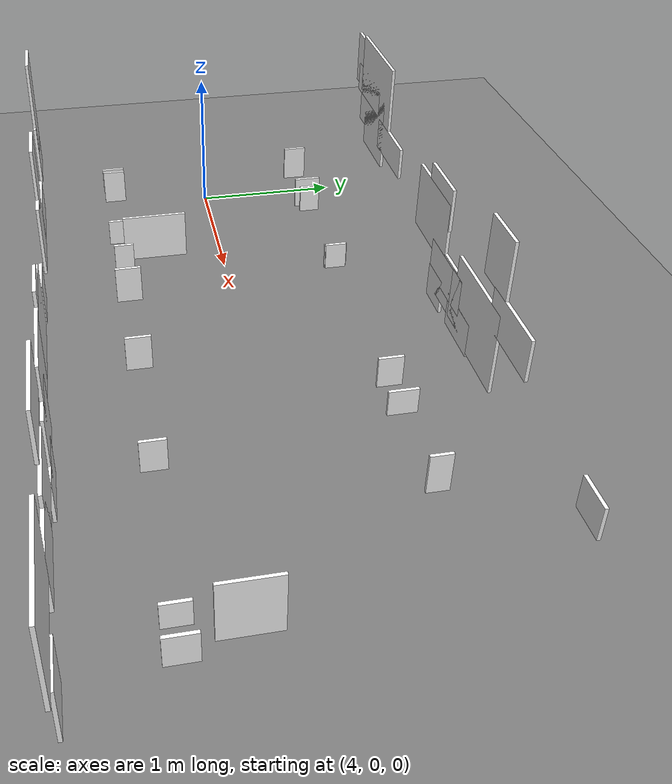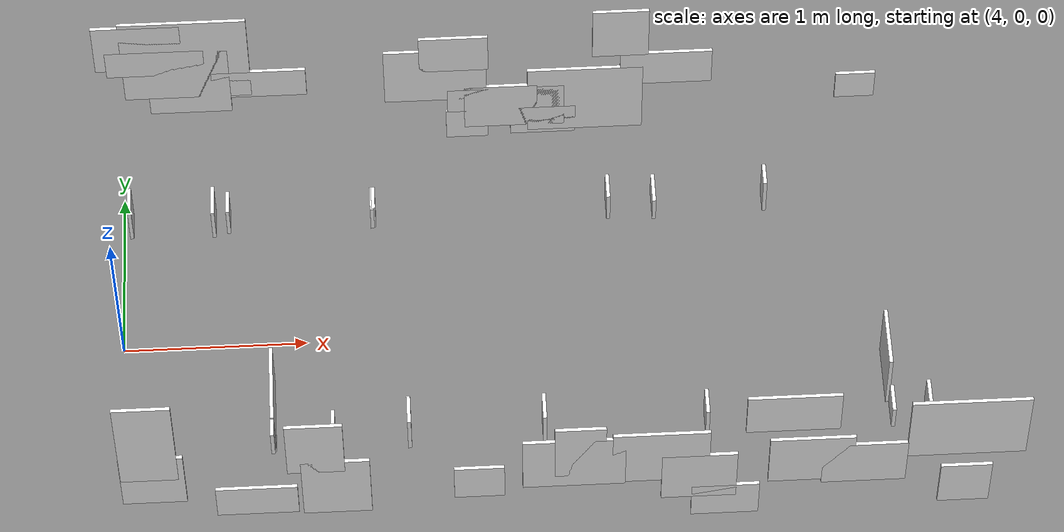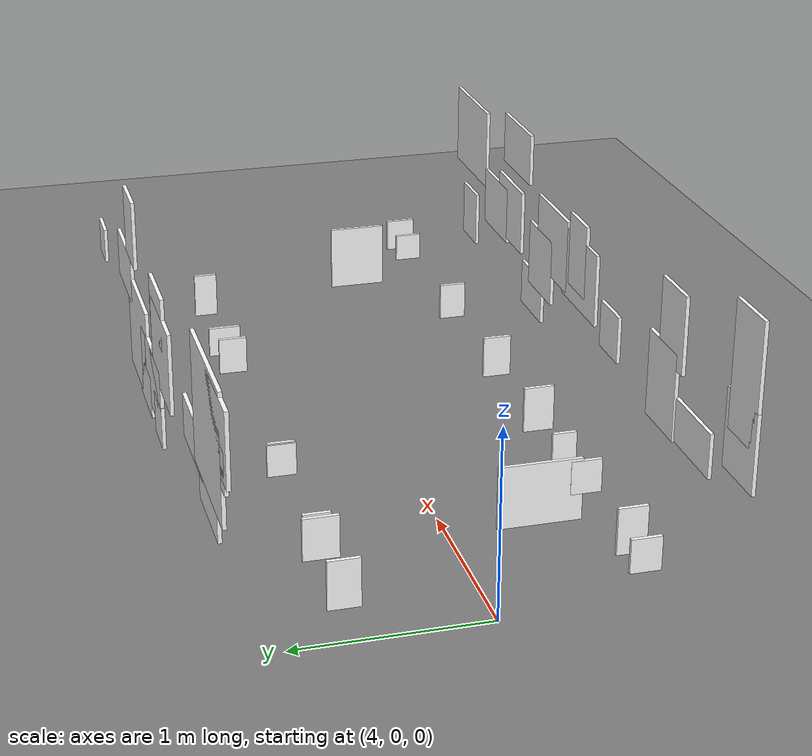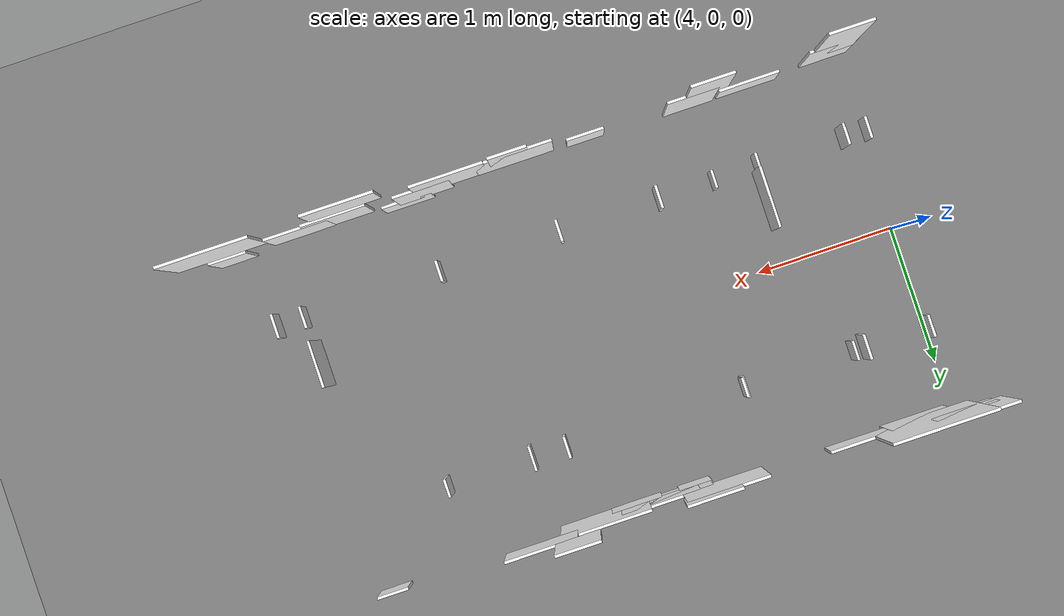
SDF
<sdf version="1.9">
 <world name="tunnel_world">
  <model name="ground_plane">
   <static>true</static>
   <link name="ground">
    <collision name="ground_collision">
     <geometry><plane><normal>0 0 1</normal><size>100 100</size></plane></geometry>
    </collision>
    <visual name="ground_visual">
     <geometry><plane><normal>0 0 1</normal><size>100 100</size></plane></geometry>
     <material>
      <diffuse>0.50 0.50 0.50 1</diffuse>
      <emissive>0.08 0.08 0.08 1</emissive>
      <ambient>0.5 0.5 0.5</ambient>
     </material>
    </visual>
   </link>
  </model>
  <model name="defect_crack_02">
   <static>true</static>
   <pose>4.232 1.25 0.946 0 0 0</pose>
   <link name="link">
    <visual name="visual">
     <laser_retro>500</laser_retro>
     <geometry><box><size>0.537 0.02 0.211</size></box></geometry>
     <material>
      <ambient>1 1 1 1</ambient>
      <diffuse>1 1 1 1</diffuse>
      <emissive>0.05 0.05 0.05 1</emissive>
      <specular>0.05 0.05 0.05 1</specular>
      <pbr>
       <metal>
        <albedo_map>file:///home/ylf/workspace/inspection_robot/data_gen/textures_data1/crack_19.png</albedo_map>
        <metalness>0.0</metalness>
        <roughness>0.9</roughness>
       </metal>
      </pbr>
     </material>
    </visual>
    <collision name="collision"><geometry><box><size>0.537 0.02 0.211</size></box></geometry></collision>
   </link>
  </model>
  <model name="defect_crack_04">
   <static>true</static>
   <pose>7.529 -1.25 1.055 0 0 0</pose>
   <link name="link">
    <visual name="visual">
     <laser_retro>500</laser_retro>
     <geometry><box><size>0.49 0.02 0.311</size></box></geometry>
     <material>
      <ambient>1 1 1 1</ambient>
      <diffuse>1 1 1 1</diffuse>
      <emissive>0.05 0.05 0.05 1</emissive>
      <specular>0.05 0.05 0.05 1</specular>
      <pbr>
       <metal>
        <albedo_map>file:///home/ylf/workspace/inspection_robot/data_gen/textures_data1/crack_5.png</albedo_map>
        <metalness>0.0</metalness>
        <roughness>0.9</roughness>
       </metal>
      </pbr>
     </material>
    </visual>
    <collision name="collision"><geometry><box><size>0.49 0.02 0.311</size></box></geometry></collision>
   </link>
  </model>
  <model name="defect_crack_15">
   <static>true</static>
   <pose>6.335 1.25 0.422 0 0 0</pose>
   <link name="link">
    <visual name="visual">
     <laser_retro>500</laser_retro>
     <geometry><box><size>0.273 0.02 0.35</size></box></geometry>
     <material>
      <ambient>1 1 1 1</ambient>
      <diffuse>1 1 1 1</diffuse>
      <emissive>0.05 0.05 0.05 1</emissive>
      <specular>0.05 0.05 0.05 1</specular>
      <pbr>
       <metal>
        <albedo_map>file:///home/ylf/workspace/inspection_robot/data_gen/textures_data1/crack_10.png</albedo_map>
        <metalness>0.0</metalness>
        <roughness>0.9</roughness>
       </metal>
      </pbr>
     </material>
    </visual>
    <collision name="collision"><geometry><box><size>0.273 0.02 0.35</size></box></geometry></collision>
   </link>
  </model>
  <model name="defect_crack_17">
   <static>true</static>
   <pose>6.394 -1.25 0.664 0 0 0</pose>
   <link name="link">
    <visual name="visual">
     <laser_retro>500</laser_retro>
     <geometry><box><size>0.538 0.02 0.424</size></box></geometry>
     <material>
      <ambient>1 1 1 1</ambient>
      <diffuse>1 1 1 1</diffuse>
      <emissive>0.05 0.05 0.05 1</emissive>
      <specular>0.05 0.05 0.05 1</specular>
      <pbr>
       <metal>
        <albedo_map>file:///home/ylf/workspace/inspection_robot/data_gen/textures_data1/crack_22.png</albedo_map>
        <metalness>0.0</metalness>
        <roughness>0.9</roughness>
       </metal>
      </pbr>
     </material>
    </visual>
    <collision name="collision"><geometry><box><size>0.538 0.02 0.424</size></box></geometry></collision>
   </link>
  </model>
  <model name="defect_equip_bracket_loose_05">
   <static>true</static>
   <pose>7.195 -1.25 0.244 0 0 0</pose>
   <link name="link">
    <visual name="visual">
     <laser_retro>760</laser_retro>
     <geometry><box><size>0.358 0.02 0.273</size></box></geometry>
     <material>
      <ambient>1 1 1 1</ambient>
      <diffuse>1 1 1 1</diffuse>
      <emissive>0.05 0.05 0.05 1</emissive>
      <specular>0.05 0.05 0.05 1</specular>
      <pbr>
       <metal>
        <albedo_map>file:///home/ylf/workspace/inspection_robot/data_gen/textures_data1/equip_bracket_loose_6.png</albedo_map>
        <metalness>0.0</metalness>
        <roughness>0.9</roughness>
       </metal>
      </pbr>
     </material>
    </visual>
    <collision name="collision"><geometry><box><size>0.358 0.02 0.273</size></box></geometry></collision>
   </link>
  </model>
  <model name="defect_equip_bracket_loose_07">
   <static>true</static>
   <pose>5.898 -1.25 0.518 0 0 0</pose>
   <link name="link">
    <visual name="visual">
     <laser_retro>760</laser_retro>
     <geometry><box><size>0.264 0.02 0.271</size></box></geometry>
     <material>
      <ambient>1 1 1 1</ambient>
      <diffuse>1 1 1 1</diffuse>
      <emissive>0.05 0.05 0.05 1</emissive>
      <specular>0.05 0.05 0.05 1</specular>
      <pbr>
       <metal>
        <albedo_map>file:///home/ylf/workspace/inspection_robot/data_gen/textures_data1/equip_bracket_loose_1.png</albedo_map>
        <metalness>0.0</metalness>
        <roughness>0.9</roughness>
       </metal>
      </pbr>
     </material>
    </visual>
    <collision name="collision"><geometry><box><size>0.264 0.02 0.271</size></box></geometry></collision>
   </link>
  </model>
  <model name="defect_equip_bracket_loose_11">
   <static>true</static>
   <pose>8.093 1.25 0.492 0 0 0</pose>
   <link name="link">
    <visual name="visual">
     <laser_retro>760</laser_retro>
     <geometry><box><size>0.219 0.02 0.208</size></box></geometry>
     <material>
      <ambient>1 1 1 1</ambient>
      <diffuse>1 1 1 1</diffuse>
      <emissive>0.05 0.05 0.05 1</emissive>
      <specular>0.05 0.05 0.05 1</specular>
      <pbr>
       <metal>
        <albedo_map>file:///home/ylf/workspace/inspection_robot/data_gen/textures_data1/equip_bracket_loose_17.png</albedo_map>
        <metalness>0.0</metalness>
        <roughness>0.9</roughness>
       </metal>
      </pbr>
     </material>
    </visual>
    <collision name="collision"><geometry><box><size>0.219 0.02 0.208</size></box></geometry></collision>
   </link>
  </model>
  <model name="defect_equip_bracket_loose_12">
   <static>true</static>
   <pose>4.731 -1.25 0.43 0 0 0</pose>
   <link name="link">
    <visual name="visual">
     <laser_retro>760</laser_retro>
     <geometry><box><size>0.43 0.02 0.245</size></box></geometry>
     <material>
      <ambient>1 1 1 1</ambient>
      <diffuse>1 1 1 1</diffuse>
      <emissive>0.05 0.05 0.05 1</emissive>
      <specular>0.05 0.05 0.05 1</specular>
      <pbr>
       <metal>
        <albedo_map>file:///home/ylf/workspace/inspection_robot/data_gen/textures_data1/equip_bracket_loose_19.png</albedo_map>
        <metalness>0.0</metalness>
        <roughness>0.9</roughness>
       </metal>
      </pbr>
     </material>
    </visual>
    <collision name="collision"><geometry><box><size>0.43 0.02 0.245</size></box></geometry></collision>
   </link>
  </model>
  <model name="defect_equip_bracket_loose_13">
   <static>true</static>
   <pose>6.427 -1.25 0.766 0 0 0</pose>
   <link name="link">
    <visual name="visual">
     <laser_retro>760</laser_retro>
     <geometry><box><size>0.268 0.02 0.437</size></box></geometry>
     <material>
      <ambient>1 1 1 1</ambient>
      <diffuse>1 1 1 1</diffuse>
      <emissive>0.05 0.05 0.05 1</emissive>
      <specular>0.05 0.05 0.05 1</specular>
      <pbr>
       <metal>
        <albedo_map>file:///home/ylf/workspace/inspection_robot/data_gen/textures_data1/equip_bracket_loose_10.png</albedo_map>
        <metalness>0.0</metalness>
        <roughness>0.9</roughness>
       </metal>
      </pbr>
     </material>
    </visual>
    <collision name="collision"><geometry><box><size>0.268 0.02 0.437</size></box></geometry></collision>
   </link>
  </model>
  <model name="defect_equip_bracket_loose_18">
   <static>true</static>
   <pose>8.465 -1.25 0.305 0 0 0</pose>
   <link name="link">
    <visual name="visual">
     <laser_retro>760</laser_retro>
     <geometry><box><size>0.272 0.02 0.34</size></box></geometry>
     <material>
      <ambient>1 1 1 1</ambient>
      <diffuse>1 1 1 1</diffuse>
      <emissive>0.05 0.05 0.05 1</emissive>
      <specular>0.05 0.05 0.05 1</specular>
      <pbr>
       <metal>
        <albedo_map>file:///home/ylf/workspace/inspection_robot/data_gen/textures_data1/equip_bracket_loose_25.png</albedo_map>
        <metalness>0.0</metalness>
        <roughness>0.9</roughness>
       </metal>
      </pbr>
     </material>
    </visual>
    <collision name="collision"><geometry><box><size>0.272 0.02 0.34</size></box></geometry></collision>
   </link>
  </model>
  <model name="defect_equip_bracket_loose_21">
   <static>true</static>
   <pose>6.354 1.25 0.288 0 0 0</pose>
   <link name="link">
    <visual name="visual">
     <laser_retro>760</laser_retro>
     <geometry><box><size>0.362 0.02 0.233</size></box></geometry>
     <material>
      <ambient>1 1 1 1</ambient>
      <diffuse>1 1 1 1</diffuse>
      <emissive>0.05 0.05 0.05 1</emissive>
      <specular>0.05 0.05 0.05 1</specular>
      <pbr>
       <metal>
        <albedo_map>file:///home/ylf/workspace/inspection_robot/data_gen/textures_data1/equip_bracket_loose_4.png</albedo_map>
        <metalness>0.0</metalness>
        <roughness>0.9</roughness>
       </metal>
      </pbr>
     </material>
    </visual>
    <collision name="collision"><geometry><box><size>0.362 0.02 0.233</size></box></geometry></collision>
   </link>
  </model>
  <model name="defect_equip_bracket_loose_23">
   <static>true</static>
   <pose>5.931 1.25 0.276 0 0 0</pose>
   <link name="link">
    <visual name="visual">
     <laser_retro>760</laser_retro>
     <geometry><box><size>0.233 0.02 0.236</size></box></geometry>
     <material>
      <ambient>1 1 1 1</ambient>
      <diffuse>1 1 1 1</diffuse>
      <emissive>0.05 0.05 0.05 1</emissive>
      <specular>0.05 0.05 0.05 1</specular>
      <pbr>
       <metal>
        <albedo_map>file:///home/ylf/workspace/inspection_robot/data_gen/textures_data1/equip_bracket_loose_3.png</albedo_map>
        <metalness>0.0</metalness>
        <roughness>0.9</roughness>
       </metal>
      </pbr>
     </material>
    </visual>
    <collision name="collision"><geometry><box><size>0.233 0.02 0.236</size></box></geometry></collision>
   </link>
  </model>
  <model name="defect_equip_intrusion_03">
   <static>true</static>
   <pose>4.81 -0.477 0.183 0 0 0</pose>
   <link name="link">
    <visual name="visual">
     <laser_retro>900</laser_retro>
     <geometry><box><size>0.02 0.445 0.345</size></box></geometry>
     <material>
      <ambient>1 1 1 1</ambient>
      <diffuse>1 1 1 1</diffuse>
      <emissive>0.05 0.05 0.05 1</emissive>
      <specular>0.05 0.05 0.05 1</specular>
      <pbr>
       <metal>
        <albedo_map>file:///home/ylf/workspace/inspection_robot/data_gen/textures_data1/equip_intrusion_1.png</albedo_map>
        <metalness>0.0</metalness>
        <roughness>0.9</roughness>
       </metal>
      </pbr>
     </material>
    </visual>
   </link>
  </model>
  <model name="defect_equip_intrusion_08">
   <static>true</static>
   <pose>8.138 -0.376 0.205 0 0 0</pose>
   <link name="link">
    <visual name="visual">
     <laser_retro>900</laser_retro>
     <geometry><box><size>0.02 0.339 0.391</size></box></geometry>
     <material>
      <ambient>1 1 1 1</ambient>
      <diffuse>1 1 1 1</diffuse>
      <emissive>0.05 0.05 0.05 1</emissive>
      <specular>0.05 0.05 0.05 1</specular>
      <pbr>
       <metal>
        <albedo_map>file:///home/ylf/workspace/inspection_robot/data_gen/textures_data1/equip_intrusion_8.png</albedo_map>
        <metalness>0.0</metalness>
        <roughness>0.9</roughness>
       </metal>
      </pbr>
     </material>
    </visual>
   </link>
  </model>
  <model name="defect_leakage_01">
   <static>true</static>
   <pose>6.589 1.25 0.468 0 0 0</pose>
   <link name="link">
    <visual name="visual">
     <laser_retro>300</laser_retro>
     <geometry><box><size>0.639 0.02 0.542</size></box></geometry>
     <material>
      <ambient>1 1 1 1</ambient>
      <diffuse>1 1 1 1</diffuse>
      <emissive>0.05 0.05 0.05 1</emissive>
      <specular>0.05 0.05 0.05 1</specular>
      <pbr>
       <metal>
        <albedo_map>file:///home/ylf/workspace/inspection_robot/data_gen/textures_data1/leakage_22.png</albedo_map>
        <metalness>0.0</metalness>
        <roughness>0.9</roughness>
       </metal>
      </pbr>
     </material>
    </visual>
    <collision name="collision"><geometry><box><size>0.639 0.02 0.542</size></box></geometry></collision>
   </link>
  </model>
  <model name="defect_leakage_04">
   <static>true</static>
   <pose>5.15 -1.25 0.534 0 0 0</pose>
   <link name="link">
    <visual name="visual">
     <laser_retro>300</laser_retro>
     <geometry><box><size>0.36 0.02 0.488</size></box></geometry>
     <material>
      <ambient>1 1 1 1</ambient>
      <diffuse>1 1 1 1</diffuse>
      <emissive>0.05 0.05 0.05 1</emissive>
      <specular>0.05 0.05 0.05 1</specular>
      <pbr>
       <metal>
        <albedo_map>file:///home/ylf/workspace/inspection_robot/data_gen/textures_data1/leakage_9.png</albedo_map>
        <metalness>0.0</metalness>
        <roughness>0.9</roughness>
       </metal>
      </pbr>
     </material>
    </visual>
    <collision name="collision"><geometry><box><size>0.36 0.02 0.488</size></box></geometry></collision>
   </link>
  </model>
  <model name="defect_leakage_07">
   <static>true</static>
   <pose>6.849 -1.25 0.687 0 0 0</pose>
   <link name="link">
    <visual name="visual">
     <laser_retro>300</laser_retro>
     <geometry><box><size>0.508 0.02 0.439</size></box></geometry>
     <material>
      <ambient>1 1 1 1</ambient>
      <diffuse>1 1 1 1</diffuse>
      <emissive>0.05 0.05 0.05 1</emissive>
      <specular>0.05 0.05 0.05 1</specular>
      <pbr>
       <metal>
        <albedo_map>file:///home/ylf/workspace/inspection_robot/data_gen/textures_data1/leakage_10.png</albedo_map>
        <metalness>0.0</metalness>
        <roughness>0.9</roughness>
       </metal>
      </pbr>
     </material>
    </visual>
    <collision name="collision"><geometry><box><size>0.508 0.02 0.439</size></box></geometry></collision>
   </link>
  </model>
  <model name="defect_leakage_08">
   <static>true</static>
   <pose>4.184 -1.25 1.016 0 0 0</pose>
   <link name="link">
    <visual name="visual">
     <laser_retro>300</laser_retro>
     <geometry><box><size>0.302 0.02 0.674</size></box></geometry>
     <material>
      <ambient>1 1 1 1</ambient>
      <diffuse>1 1 1 1</diffuse>
      <emissive>0.05 0.05 0.05 1</emissive>
      <specular>0.05 0.05 0.05 1</specular>
      <pbr>
       <metal>
        <albedo_map>file:///home/ylf/workspace/inspection_robot/data_gen/textures_data1/leakage_11.png</albedo_map>
        <metalness>0.0</metalness>
        <roughness>0.9</roughness>
       </metal>
      </pbr>
     </material>
    </visual>
    <collision name="collision"><geometry><box><size>0.302 0.02 0.674</size></box></geometry></collision>
   </link>
  </model>
  <model name="defect_leakage_14">
   <static>true</static>
   <pose>4.406 1.25 0.767 0 0 0</pose>
   <link name="link">
    <visual name="visual">
     <laser_retro>300</laser_retro>
     <geometry><box><size>0.45 0.02 0.548</size></box></geometry>
     <material>
      <ambient>1 1 1 1</ambient>
      <diffuse>1 1 1 1</diffuse>
      <emissive>0.05 0.05 0.05 1</emissive>
      <specular>0.05 0.05 0.05 1</specular>
      <pbr>
       <metal>
        <albedo_map>file:///home/ylf/workspace/inspection_robot/data_gen/textures_data1/leakage_14.png</albedo_map>
        <metalness>0.0</metalness>
        <roughness>0.9</roughness>
       </metal>
      </pbr>
     </material>
    </visual>
    <collision name="collision"><geometry><box><size>0.45 0.02 0.548</size></box></geometry></collision>
   </link>
  </model>
  <model name="defect_leakage_17">
   <static>true</static>
   <pose>4.398 1.25 0.964 0 0 0</pose>
   <link name="link">
    <visual name="visual">
     <laser_retro>300</laser_retro>
     <geometry><box><size>0.696 0.02 0.665</size></box></geometry>
     <material>
      <ambient>1 1 1 1</ambient>
      <diffuse>1 1 1 1</diffuse>
      <emissive>0.05 0.05 0.05 1</emissive>
      <specular>0.05 0.05 0.05 1</specular>
      <pbr>
       <metal>
        <albedo_map>file:///home/ylf/workspace/inspection_robot/data_gen/textures_data1/leakage_18.png</albedo_map>
        <metalness>0.0</metalness>
        <roughness>0.9</roughness>
       </metal>
      </pbr>
     </material>
    </visual>
    <collision name="collision"><geometry><box><size>0.696 0.02 0.665</size></box></geometry></collision>
   </link>
  </model>
  <model name="defect_leakage_19">
   <static>true</static>
   <pose>5.76 1.25 0.731 0 0 0</pose>
   <link name="link">
    <visual name="visual">
     <laser_retro>300</laser_retro>
     <geometry><box><size>0.564 0.02 0.44</size></box></geometry>
     <material>
      <ambient>1 1 1 1</ambient>
      <diffuse>1 1 1 1</diffuse>
      <emissive>0.05 0.05 0.05 1</emissive>
      <specular>0.05 0.05 0.05 1</specular>
      <pbr>
       <metal>
        <albedo_map>file:///home/ylf/workspace/inspection_robot/data_gen/textures_data1/leakage_24.png</albedo_map>
        <metalness>0.0</metalness>
        <roughness>0.9</roughness>
       </metal>
      </pbr>
     </material>
    </visual>
    <collision name="collision"><geometry><box><size>0.564 0.02 0.44</size></box></geometry></collision>
   </link>
  </model>
  <model name="defect_leakage_22">
   <static>true</static>
   <pose>4.199 -1.25 0.673 0 0 0</pose>
   <link name="link">
    <visual name="visual">
     <laser_retro>300</laser_retro>
     <geometry><box><size>0.336 0.02 0.424</size></box></geometry>
     <material>
      <ambient>1 1 1 1</ambient>
      <diffuse>1 1 1 1</diffuse>
      <emissive>0.05 0.05 0.05 1</emissive>
      <specular>0.05 0.05 0.05 1</specular>
      <pbr>
       <metal>
        <albedo_map>file:///home/ylf/workspace/inspection_robot/data_gen/textures_data1/leakage_2.png</albedo_map>
        <metalness>0.0</metalness>
        <roughness>0.9</roughness>
       </metal>
      </pbr>
     </material>
    </visual>
    <collision name="collision"><geometry><box><size>0.336 0.02 0.424</size></box></geometry></collision>
   </link>
  </model>
  <model name="defect_leakage_23">
   <static>true</static>
   <pose>7.052 -1.25 0.487 0 0 0</pose>
   <link name="link">
    <visual name="visual">
     <laser_retro>300</laser_retro>
     <geometry><box><size>0.396 0.02 0.398</size></box></geometry>
     <material>
      <ambient>1 1 1 1</ambient>
      <diffuse>1 1 1 1</diffuse>
      <emissive>0.05 0.05 0.05 1</emissive>
      <specular>0.05 0.05 0.05 1</specular>
      <pbr>
       <metal>
        <albedo_map>file:///home/ylf/workspace/inspection_robot/data_gen/textures_data1/leakage_4.png</albedo_map>
        <metalness>0.0</metalness>
        <roughness>0.9</roughness>
       </metal>
      </pbr>
     </material>
    </visual>
    <collision name="collision"><geometry><box><size>0.396 0.02 0.398</size></box></geometry></collision>
   </link>
  </model>
  <model name="defect_leakage_25">
   <static>true</static>
   <pose>8.451 -1.25 0.846 0 0 0</pose>
   <link name="link">
    <visual name="visual">
     <laser_retro>300</laser_retro>
     <geometry><box><size>0.625 0.02 0.494</size></box></geometry>
     <material>
      <ambient>1 1 1 1</ambient>
      <diffuse>1 1 1 1</diffuse>
      <emissive>0.05 0.05 0.05 1</emissive>
      <specular>0.05 0.05 0.05 1</specular>
      <pbr>
       <metal>
        <albedo_map>file:///home/ylf/workspace/inspection_robot/data_gen/textures_data1/leakage_20.png</albedo_map>
        <metalness>0.0</metalness>
        <roughness>0.9</roughness>
       </metal>
      </pbr>
     </material>
    </visual>
    <collision name="collision"><geometry><box><size>0.625 0.02 0.494</size></box></geometry></collision>
   </link>
  </model>
  <model name="defect_rail_fastener_broken_11">
   <static>true</static>
   <pose>5.39 0.717 0.247 0 0 0</pose>
   <link name="link">
    <visual name="visual">
     <laser_retro>450</laser_retro>
     <geometry><box><size>0.02 0.141 0.185</size></box></geometry>
     <material>
      <ambient>1 1 1 1</ambient>
      <diffuse>1 1 1 1</diffuse>
      <emissive>0.05 0.05 0.05 1</emissive>
      <specular>0.05 0.05 0.05 1</specular>
      <pbr>
       <metal>
        <albedo_map>file:///home/ylf/workspace/inspection_robot/data_gen/textures_data1/rail_fastener_broken_1.png</albedo_map>
        <metalness>0.0</metalness>
        <roughness>0.9</roughness>
       </metal>
      </pbr>
     </material>
    </visual>
   </link>
  </model>
  <model name="defect_rail_fastener_broken_12">
   <static>true</static>
   <pose>5.541 -0.717 0.282 0 0 0</pose>
   <link name="link">
    <visual name="visual">
     <laser_retro>450</laser_retro>
     <geometry><box><size>0.02 0.166 0.254</size></box></geometry>
     <material>
      <ambient>1 1 1 1</ambient>
      <diffuse>1 1 1 1</diffuse>
      <emissive>0.05 0.05 0.05 1</emissive>
      <specular>0.05 0.05 0.05 1</specular>
      <pbr>
       <metal>
        <albedo_map>file:///home/ylf/workspace/inspection_robot/data_gen/textures_data1/rail_fastener_broken_4.png</albedo_map>
        <metalness>0.0</metalness>
        <roughness>0.9</roughness>
       </metal>
      </pbr>
     </material>
    </visual>
   </link>
  </model>
  <model name="defect_rail_fastener_broken_15">
   <static>true</static>
   <pose>4.186 -0.717 0.279 0 0 0</pose>
   <link name="link">
    <visual name="visual">
     <laser_retro>450</laser_retro>
     <geometry><box><size>0.02 0.154 0.249</size></box></geometry>
     <material>
      <ambient>1 1 1 1</ambient>
      <diffuse>1 1 1 1</diffuse>
      <emissive>0.05 0.05 0.05 1</emissive>
      <specular>0.05 0.05 0.05 1</specular>
      <pbr>
       <metal>
        <albedo_map>file:///home/ylf/workspace/inspection_robot/data_gen/textures_data1/rail_fastener_broken_5.png</albedo_map>
        <metalness>0.0</metalness>
        <roughness>0.9</roughness>
       </metal>
      </pbr>
     </material>
    </visual>
   </link>
  </model>
  <model name="defect_rail_fastener_broken_18">
   <static>true</static>
   <pose>4.052 0.717 0.282 0 0 0</pose>
   <link name="link">
    <visual name="visual">
     <laser_retro>450</laser_retro>
     <geometry><box><size>0.02 0.161 0.253</size></box></geometry>
     <material>
      <ambient>1 1 1 1</ambient>
      <diffuse>1 1 1 1</diffuse>
      <emissive>0.05 0.05 0.05 1</emissive>
      <specular>0.05 0.05 0.05 1</specular>
      <pbr>
       <metal>
        <albedo_map>file:///home/ylf/workspace/inspection_robot/data_gen/textures_data1/rail_fastener_broken_7.png</albedo_map>
        <metalness>0.0</metalness>
        <roughness>0.9</roughness>
       </metal>
      </pbr>
     </material>
    </visual>
   </link>
  </model>
  <model name="defect_rail_fastener_broken_21">
   <static>true</static>
   <pose>4.809 -0.717 0.247 0 0 0</pose>
   <link name="link">
    <visual name="visual">
     <laser_retro>450</laser_retro>
     <geometry><box><size>0.02 0.164 0.184</size></box></geometry>
     <material>
      <ambient>1 1 1 1</ambient>
      <diffuse>1 1 1 1</diffuse>
      <emissive>0.05 0.05 0.05 1</emissive>
      <specular>0.05 0.05 0.05 1</specular>
      <pbr>
       <metal>
        <albedo_map>file:///home/ylf/workspace/inspection_robot/data_gen/textures_data1/rail_fastener_broken_8.png</albedo_map>
        <metalness>0.0</metalness>
        <roughness>0.9</roughness>
       </metal>
      </pbr>
     </material>
    </visual>
   </link>
  </model>
  <model name="defect_rail_fastener_loose_12">
   <static>true</static>
   <pose>6.265 -0.717 0.273 0 0 0</pose>
   <link name="link">
    <visual name="visual">
     <laser_retro>380</laser_retro>
     <geometry><box><size>0.02 0.158 0.236</size></box></geometry>
     <material>
      <ambient>1 1 1 1</ambient>
      <diffuse>1 1 1 1</diffuse>
      <emissive>0.05 0.05 0.05 1</emissive>
      <specular>0.05 0.05 0.05 1</specular>
      <pbr>
       <metal>
        <albedo_map>file:///home/ylf/workspace/inspection_robot/data_gen/textures_data1/rail_fastener_loose_22.png</albedo_map>
        <metalness>0.0</metalness>
        <roughness>0.9</roughness>
       </metal>
      </pbr>
     </material>
    </visual>
   </link>
  </model>
  <model name="defect_rail_fastener_loose_13">
   <static>true</static>
   <pose>8.137 -0.717 0.237 0 0 0</pose>
   <link name="link">
    <visual name="visual">
     <laser_retro>380</laser_retro>
     <geometry><box><size>0.02 0.157 0.164</size></box></geometry>
     <material>
      <ambient>1 1 1 1</ambient>
      <diffuse>1 1 1 1</diffuse>
      <emissive>0.05 0.05 0.05 1</emissive>
      <specular>0.05 0.05 0.05 1</specular>
      <pbr>
       <metal>
        <albedo_map>file:///home/ylf/workspace/inspection_robot/data_gen/textures_data1/rail_fastener_loose_20.png</albedo_map>
        <metalness>0.0</metalness>
        <roughness>0.9</roughness>
       </metal>
      </pbr>
     </material>
    </visual>
   </link>
  </model>
  <model name="defect_rail_fastener_loose_14">
   <static>true</static>
   <pose>7.137 -0.717 0.261 0 0 0</pose>
   <link name="link">
    <visual name="visual">
     <laser_retro>380</laser_retro>
     <geometry><box><size>0.02 0.152 0.213</size></box></geometry>
     <material>
      <ambient>1 1 1 1</ambient>
      <diffuse>1 1 1 1</diffuse>
      <emissive>0.05 0.05 0.05 1</emissive>
      <specular>0.05 0.05 0.05 1</specular>
      <pbr>
       <metal>
        <albedo_map>file:///home/ylf/workspace/inspection_robot/data_gen/textures_data1/rail_fastener_loose_8.png</albedo_map>
        <metalness>0.0</metalness>
        <roughness>0.9</roughness>
       </metal>
      </pbr>
     </material>
    </visual>
   </link>
  </model>
  <model name="defect_rail_fastener_loose_15">
   <static>true</static>
   <pose>5.134 -0.717 0.245 0 0 0</pose>
   <link name="link">
    <visual name="visual">
     <laser_retro>380</laser_retro>
     <geometry><box><size>0.02 0.13 0.181</size></box></geometry>
     <material>
      <ambient>1 1 1 1</ambient>
      <diffuse>1 1 1 1</diffuse>
      <emissive>0.05 0.05 0.05 1</emissive>
      <specular>0.05 0.05 0.05 1</specular>
      <pbr>
       <metal>
        <albedo_map>file:///home/ylf/workspace/inspection_robot/data_gen/textures_data1/rail_fastener_loose_24.png</albedo_map>
        <metalness>0.0</metalness>
        <roughness>0.9</roughness>
       </metal>
      </pbr>
     </material>
    </visual>
   </link>
  </model>
  <model name="defect_rail_fastener_loose_16">
   <static>true</static>
   <pose>4.009 -0.717 0.245 0 0 0</pose>
   <link name="link">
    <visual name="visual">
     <laser_retro>380</laser_retro>
     <geometry><box><size>0.02 0.158 0.18</size></box></geometry>
     <material>
      <ambient>1 1 1 1</ambient>
      <diffuse>1 1 1 1</diffuse>
      <emissive>0.05 0.05 0.05 1</emissive>
      <specular>0.05 0.05 0.05 1</specular>
      <pbr>
       <metal>
        <albedo_map>file:///home/ylf/workspace/inspection_robot/data_gen/textures_data1/rail_fastener_loose_17.png</albedo_map>
        <metalness>0.0</metalness>
        <roughness>0.9</roughness>
       </metal>
      </pbr>
     </material>
    </visual>
   </link>
  </model>
  <model name="defect_rail_fastener_loose_21">
   <static>true</static>
   <pose>7.553 0.717 0.283 0 0 0</pose>
   <link name="link">
    <visual name="visual">
     <laser_retro>380</laser_retro>
     <geometry><box><size>0.02 0.132 0.257</size></box></geometry>
     <material>
      <ambient>1 1 1 1</ambient>
      <diffuse>1 1 1 1</diffuse>
      <emissive>0.05 0.05 0.05 1</emissive>
      <specular>0.05 0.05 0.05 1</specular>
      <pbr>
       <metal>
        <albedo_map>file:///home/ylf/workspace/inspection_robot/data_gen/textures_data1/rail_fastener_loose_2.png</albedo_map>
        <metalness>0.0</metalness>
        <roughness>0.9</roughness>
       </metal>
      </pbr>
     </material>
    </visual>
   </link>
  </model>
  <model name="defect_rail_fastener_loose_22">
   <static>true</static>
   <pose>5.382 0.717 0.245 0 0 0</pose>
   <link name="link">
    <visual name="visual">
     <laser_retro>380</laser_retro>
     <geometry><box><size>0.02 0.153 0.179</size></box></geometry>
     <material>
      <ambient>1 1 1 1</ambient>
      <diffuse>1 1 1 1</diffuse>
      <emissive>0.05 0.05 0.05 1</emissive>
      <specular>0.05 0.05 0.05 1</specular>
      <pbr>
       <metal>
        <albedo_map>file:///home/ylf/workspace/inspection_robot/data_gen/textures_data1/rail_fastener_loose_9.png</albedo_map>
        <metalness>0.0</metalness>
        <roughness>0.9</roughness>
       </metal>
      </pbr>
     </material>
    </visual>
   </link>
  </model>
  <model name="defect_rail_fastener_missing_02">
   <static>true</static>
   <pose>8.333 -0.717 0.252 0 0 0</pose>
   <link name="link">
    <visual name="visual">
     <laser_retro>520</laser_retro>
     <geometry><box><size>0.02 0.174 0.194</size></box></geometry>
     <material>
      <ambient>1 1 1 1</ambient>
      <diffuse>1 1 1 1</diffuse>
      <emissive>0.05 0.05 0.05 1</emissive>
      <specular>0.05 0.05 0.05 1</specular>
      <pbr>
       <metal>
        <albedo_map>file:///home/ylf/workspace/inspection_robot/data_gen/textures_data1/rail_fastener_missing_25.png</albedo_map>
        <metalness>0.0</metalness>
        <roughness>0.9</roughness>
       </metal>
      </pbr>
     </material>
    </visual>
   </link>
  </model>
  <model name="defect_rail_fastener_missing_03">
   <static>true</static>
   <pose>6.687 0.717 0.259 0 0 0</pose>
   <link name="link">
    <visual name="visual">
     <laser_retro>520</laser_retro>
     <geometry><box><size>0.02 0.156 0.209</size></box></geometry>
     <material>
      <ambient>1 1 1 1</ambient>
      <diffuse>1 1 1 1</diffuse>
      <emissive>0.05 0.05 0.05 1</emissive>
      <specular>0.05 0.05 0.05 1</specular>
      <pbr>
       <metal>
        <albedo_map>file:///home/ylf/workspace/inspection_robot/data_gen/textures_data1/rail_fastener_missing_21.png</albedo_map>
        <metalness>0.0</metalness>
        <roughness>0.9</roughness>
       </metal>
      </pbr>
     </material>
    </visual>
   </link>
  </model>
  <model name="defect_rail_fastener_missing_12">
   <static>true</static>
   <pose>4.507 0.717 0.268 0 0 0</pose>
   <link name="link">
    <visual name="visual">
     <laser_retro>520</laser_retro>
     <geometry><box><size>0.02 0.183 0.226</size></box></geometry>
     <material>
      <ambient>1 1 1 1</ambient>
      <diffuse>1 1 1 1</diffuse>
      <emissive>0.05 0.05 0.05 1</emissive>
      <specular>0.05 0.05 0.05 1</specular>
      <pbr>
       <metal>
        <albedo_map>file:///home/ylf/workspace/inspection_robot/data_gen/textures_data1/rail_fastener_missing_15.png</albedo_map>
        <metalness>0.0</metalness>
        <roughness>0.9</roughness>
       </metal>
      </pbr>
     </material>
    </visual>
   </link>
  </model>
  <model name="defect_rail_fastener_missing_20">
   <static>true</static>
   <pose>6.94 0.717 0.241 0 0 0</pose>
   <link name="link">
    <visual name="visual">
     <laser_retro>520</laser_retro>
     <geometry><box><size>0.02 0.181 0.171</size></box></geometry>
     <material>
      <ambient>1 1 1 1</ambient>
      <diffuse>1 1 1 1</diffuse>
      <emissive>0.05 0.05 0.05 1</emissive>
      <specular>0.05 0.05 0.05 1</specular>
      <pbr>
       <metal>
        <albedo_map>file:///home/ylf/workspace/inspection_robot/data_gen/textures_data1/rail_fastener_missing_13.png</albedo_map>
        <metalness>0.0</metalness>
        <roughness>0.9</roughness>
       </metal>
      </pbr>
     </material>
    </visual>
   </link>
  </model>
  <model name="defect_rail_fastener_missing_22">
   <static>true</static>
   <pose>4.588 0.717 0.256 0 0 0</pose>
   <link name="link">
    <visual name="visual">
     <laser_retro>520</laser_retro>
     <geometry><box><size>0.02 0.141 0.202</size></box></geometry>
     <material>
      <ambient>1 1 1 1</ambient>
      <diffuse>1 1 1 1</diffuse>
      <emissive>0.05 0.05 0.05 1</emissive>
      <specular>0.05 0.05 0.05 1</specular>
      <pbr>
       <metal>
        <albedo_map>file:///home/ylf/workspace/inspection_robot/data_gen/textures_data1/rail_fastener_missing_2.png</albedo_map>
        <metalness>0.0</metalness>
        <roughness>0.9</roughness>
       </metal>
      </pbr>
     </material>
    </visual>
   </link>
  </model>
  <model name="defect_spalling_06">
   <static>true</static>
   <pose>4.79 1.25 0.726 0 0 0</pose>
   <link name="link">
    <visual name="visual">
     <laser_retro>700</laser_retro>
     <geometry><box><size>0.518 0.02 0.221</size></box></geometry>
     <material>
      <ambient>1 1 1 1</ambient>
      <diffuse>1 1 1 1</diffuse>
      <emissive>0.05 0.05 0.05 1</emissive>
      <specular>0.05 0.05 0.05 1</specular>
      <pbr>
       <metal>
        <albedo_map>file:///home/ylf/workspace/inspection_robot/data_gen/textures_data1/spalling_11.png</albedo_map>
        <metalness>0.0</metalness>
        <roughness>0.9</roughness>
       </metal>
      </pbr>
     </material>
    </visual>
    <collision name="collision"><geometry><box><size>0.518 0.02 0.221</size></box></geometry></collision>
   </link>
  </model>
  <model name="defect_spalling_08">
   <static>true</static>
   <pose>7.64 -1.25 0.604 0 0 0</pose>
   <link name="link">
    <visual name="visual">
     <laser_retro>700</laser_retro>
     <geometry><box><size>0.448 0.02 0.394</size></box></geometry>
     <material>
      <ambient>1 1 1 1</ambient>
      <diffuse>1 1 1 1</diffuse>
      <emissive>0.05 0.05 0.05 1</emissive>
      <specular>0.05 0.05 0.05 1</specular>
      <pbr>
       <metal>
        <albedo_map>file:///home/ylf/workspace/inspection_robot/data_gen/textures_data1/spalling_2.png</albedo_map>
        <metalness>0.0</metalness>
        <roughness>0.9</roughness>
       </metal>
      </pbr>
     </material>
    </visual>
    <collision name="collision"><geometry><box><size>0.448 0.02 0.394</size></box></geometry></collision>
   </link>
  </model>
  <model name="defect_spalling_10">
   <static>true</static>
   <pose>6.782 1.25 1.047 0 0 0</pose>
   <link name="link">
    <visual name="visual">
     <laser_retro>700</laser_retro>
     <geometry><box><size>0.308 0.02 0.388</size></box></geometry>
     <material>
      <ambient>1 1 1 1</ambient>
      <diffuse>1 1 1 1</diffuse>
      <emissive>0.05 0.05 0.05 1</emissive>
      <specular>0.05 0.05 0.05 1</specular>
      <pbr>
       <metal>
        <albedo_map>file:///home/ylf/workspace/inspection_robot/data_gen/textures_data1/spalling_15.png</albedo_map>
        <metalness>0.0</metalness>
        <roughness>0.9</roughness>
       </metal>
      </pbr>
     </material>
    </visual>
    <collision name="collision"><geometry><box><size>0.308 0.02 0.388</size></box></geometry></collision>
   </link>
  </model>
  <model name="defect_spalling_11">
   <static>true</static>
   <pose>7.92 -1.25 0.55 0 0 0</pose>
   <link name="link">
    <visual name="visual">
     <laser_retro>700</laser_retro>
     <geometry><box><size>0.445 0.02 0.351</size></box></geometry>
     <material>
      <ambient>1 1 1 1</ambient>
      <diffuse>1 1 1 1</diffuse>
      <emissive>0.05 0.05 0.05 1</emissive>
      <specular>0.05 0.05 0.05 1</specular>
      <pbr>
       <metal>
        <albedo_map>file:///home/ylf/workspace/inspection_robot/data_gen/textures_data1/spalling_19.png</albedo_map>
        <metalness>0.0</metalness>
        <roughness>0.9</roughness>
       </metal>
      </pbr>
     </material>
    </visual>
    <collision name="collision"><geometry><box><size>0.445 0.02 0.351</size></box></geometry></collision>
   </link>
  </model>
  <model name="defect_spalling_13">
   <static>true</static>
   <pose>5.05 -1.25 0.908 0 0 0</pose>
   <link name="link">
    <visual name="visual">
     <laser_retro>700</laser_retro>
     <geometry><box><size>0.3 0.02 0.433</size></box></geometry>
     <material>
      <ambient>1 1 1 1</ambient>
      <diffuse>1 1 1 1</diffuse>
      <emissive>0.05 0.05 0.05 1</emissive>
      <specular>0.05 0.05 0.05 1</specular>
      <pbr>
       <metal>
        <albedo_map>file:///home/ylf/workspace/inspection_robot/data_gen/textures_data1/spalling_12.png</albedo_map>
        <metalness>0.0</metalness>
        <roughness>0.9</roughness>
       </metal>
      </pbr>
     </material>
    </visual>
    <collision name="collision"><geometry><box><size>0.3 0.02 0.433</size></box></geometry></collision>
   </link>
  </model>
  <model name="defect_spalling_16">
   <static>true</static>
   <pose>6.089 1.25 0.467 0 0 0</pose>
   <link name="link">
    <visual name="visual">
     <laser_retro>700</laser_retro>
     <geometry><box><size>0.53 0.02 0.246</size></box></geometry>
     <material>
      <ambient>1 1 1 1</ambient>
      <diffuse>1 1 1 1</diffuse>
      <emissive>0.05 0.05 0.05 1</emissive>
      <specular>0.05 0.05 0.05 1</specular>
      <pbr>
       <metal>
        <albedo_map>file:///home/ylf/workspace/inspection_robot/data_gen/textures_data1/spalling_13.png</albedo_map>
        <metalness>0.0</metalness>
        <roughness>0.9</roughness>
       </metal>
      </pbr>
     </material>
    </visual>
    <collision name="collision"><geometry><box><size>0.53 0.02 0.246</size></box></geometry></collision>
   </link>
  </model>
  <model name="defect_spalling_17">
   <static>true</static>
   <pose>6.12 1.25 0.428 0 0 0</pose>
   <link name="link">
    <visual name="visual">
     <laser_retro>700</laser_retro>
     <geometry><box><size>0.406 0.02 0.36</size></box></geometry>
     <material>
      <ambient>1 1 1 1</ambient>
      <diffuse>1 1 1 1</diffuse>
      <emissive>0.05 0.05 0.05 1</emissive>
      <specular>0.05 0.05 0.05 1</specular>
      <pbr>
       <metal>
        <albedo_map>file:///home/ylf/workspace/inspection_robot/data_gen/textures_data1/spalling_1.png</albedo_map>
        <metalness>0.0</metalness>
        <roughness>0.9</roughness>
       </metal>
      </pbr>
     </material>
    </visual>
    <collision name="collision"><geometry><box><size>0.406 0.02 0.36</size></box></geometry></collision>
   </link>
  </model>
  <model name="defect_spalling_18">
   <static>true</static>
   <pose>5.864 1.25 0.919 0 0 0</pose>
   <link name="link">
    <visual name="visual">
     <laser_retro>700</laser_retro>
     <geometry><box><size>0.38 0.02 0.286</size></box></geometry>
     <material>
      <ambient>1 1 1 1</ambient>
      <diffuse>1 1 1 1</diffuse>
      <emissive>0.05 0.05 0.05 1</emissive>
      <specular>0.05 0.05 0.05 1</specular>
      <pbr>
       <metal>
        <albedo_map>file:///home/ylf/workspace/inspection_robot/data_gen/textures_data1/spalling_17.png</albedo_map>
        <metalness>0.0</metalness>
        <roughness>0.9</roughness>
       </metal>
      </pbr>
     </material>
    </visual>
    <collision name="collision"><geometry><box><size>0.38 0.02 0.286</size></box></geometry></collision>
   </link>
  </model>
  <model name="defect_spalling_20">
   <static>true</static>
   <pose>4.145 1.25 1.083 0 0 0</pose>
   <link name="link">
    <visual name="visual">
     <laser_retro>700</laser_retro>
     <geometry><box><size>0.479 0.02 0.375</size></box></geometry>
     <material>
      <ambient>1 1 1 1</ambient>
      <diffuse>1 1 1 1</diffuse>
      <emissive>0.05 0.05 0.05 1</emissive>
      <specular>0.05 0.05 0.05 1</specular>
      <pbr>
       <metal>
        <albedo_map>file:///home/ylf/workspace/inspection_robot/data_gen/textures_data1/spalling_21.png</albedo_map>
        <metalness>0.0</metalness>
        <roughness>0.9</roughness>
       </metal>
      </pbr>
     </material>
    </visual>
    <collision name="collision"><geometry><box><size>0.479 0.02 0.375</size></box></geometry></collision>
   </link>
  </model>
  <model name="defect_spalling_22">
   <static>true</static>
   <pose>7.036 1.25 0.724 0 0 0</pose>
   <link name="link">
    <visual name="visual">
     <laser_retro>700</laser_retro>
     <geometry><box><size>0.506 0.02 0.271</size></box></geometry>
     <material>
      <ambient>1 1 1 1</ambient>
      <diffuse>1 1 1 1</diffuse>
      <emissive>0.05 0.05 0.05 1</emissive>
      <specular>0.05 0.05 0.05 1</specular>
      <pbr>
       <metal>
        <albedo_map>file:///home/ylf/workspace/inspection_robot/data_gen/textures_data1/spalling_25.png</albedo_map>
        <metalness>0.0</metalness>
        <roughness>0.9</roughness>
       </metal>
      </pbr>
     </material>
    </visual>
    <collision name="collision"><geometry><box><size>0.506 0.02 0.271</size></box></geometry></collision>
   </link>
  </model>
 </world>
</sdf>
